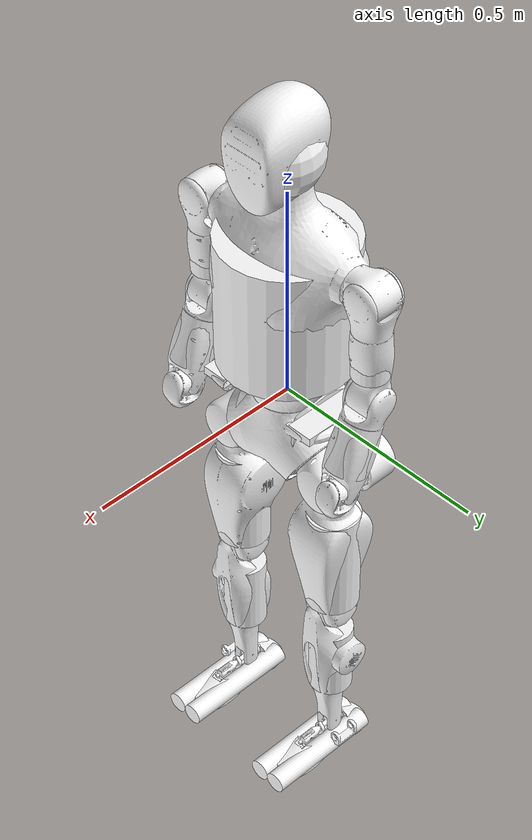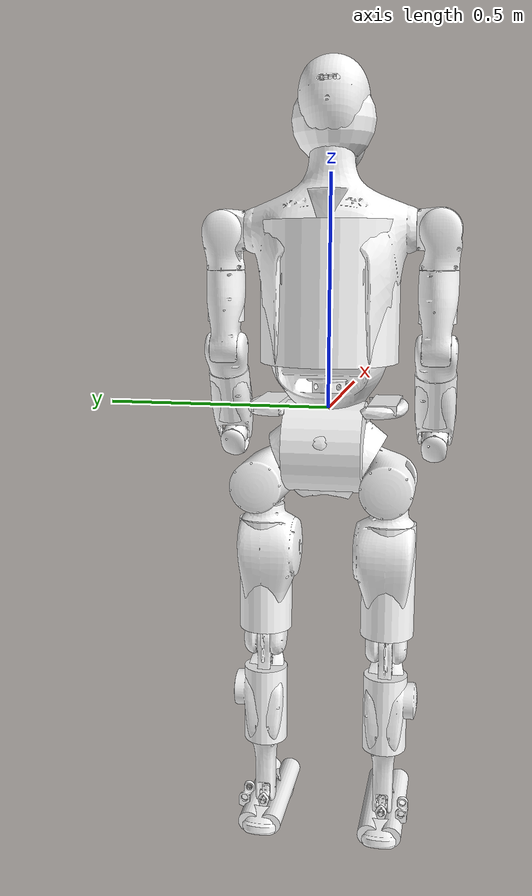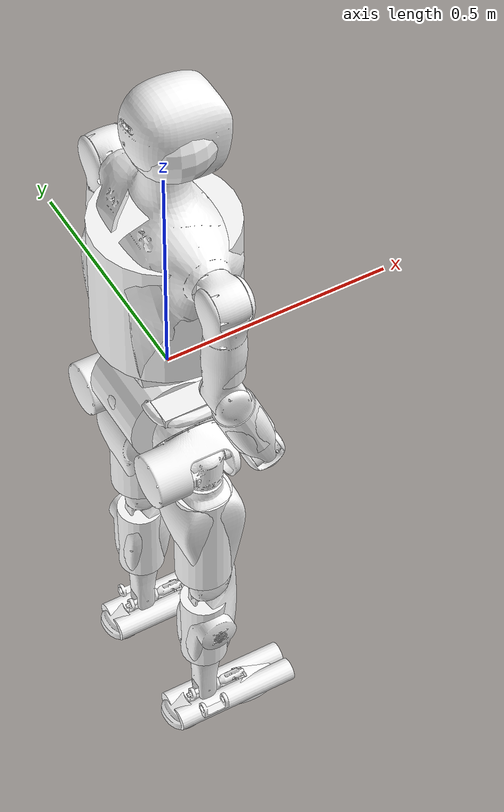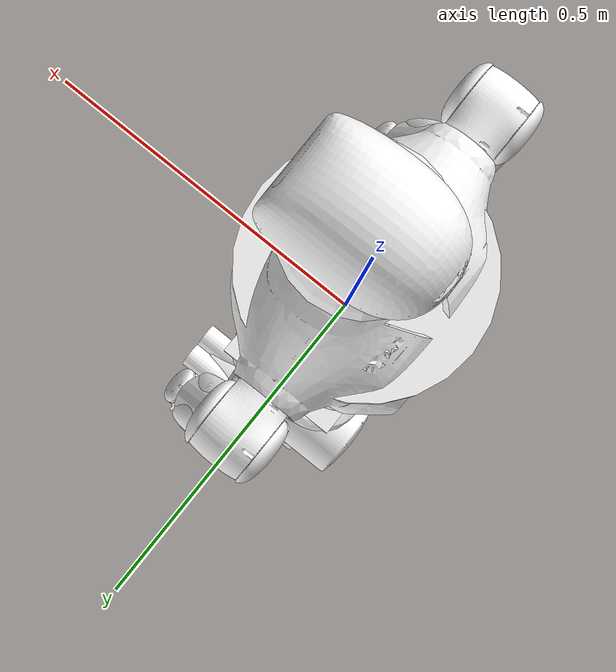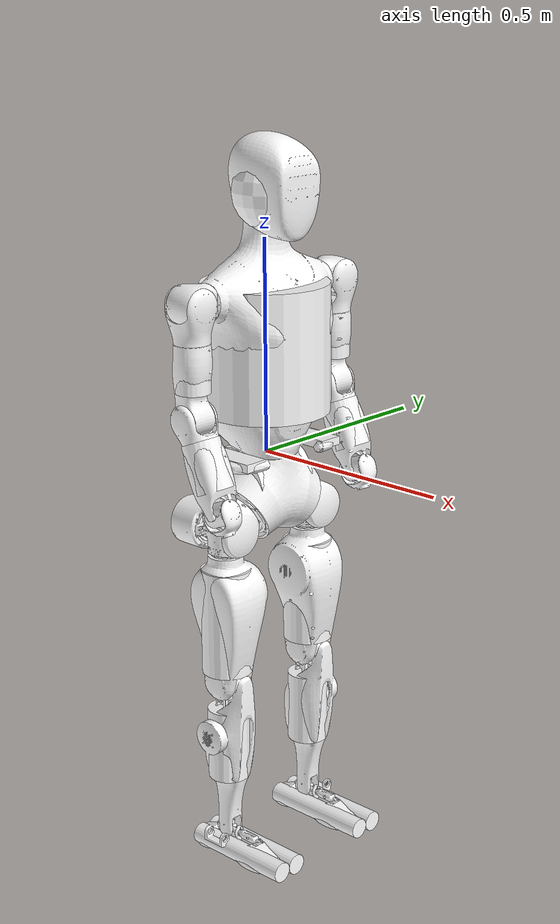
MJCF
<mujoco model="gr2v3_8_7">
  <compiler angle="radian" meshdir="../meshes/"/>

  <asset>
    <mesh name="base_link" file="../meshes/gr2v3_8_7/base_link.STL"/>
    <mesh name="waist_yaw_link" file="../meshes/gr2v3_8_7/waist_yaw_link.STL"/>
    <mesh name="torso_link" file="../meshes/gr2v3_8_7/torso_link.STL"/>
    <mesh name="head_yaw_link" file="../meshes/gr2v3_8_7/head_yaw_link.STL"/>
    <mesh name="head_pitch_link" file="../meshes/gr2v3_8_7/head_pitch_link.STL"/>
    <mesh name="left_upper_arm_pitch_link" file="../meshes/gr2v3_8_7/left_upper_arm_pitch_link.STL"/>
    <mesh name="left_upper_arm_roll_link" file="../meshes/gr2v3_8_7/left_upper_arm_roll_link.STL"/>
    <mesh name="left_upper_arm_yaw_link" file="../meshes/gr2v3_8_7/left_upper_arm_yaw_link.STL"/>
    <mesh name="left_lower_arm_pitch_link" file="../meshes/gr2v3_8_7/left_lower_arm_pitch_link.STL"/>
    <mesh name="left_hand_yaw_link" file="../meshes/gr2v3_8_7/left_hand_yaw_link.STL"/>
    <mesh name="left_hand_pitch_link" file="../meshes/gr2v3_8_7/left_hand_pitch_link.STL"/>
    <mesh name="left_hand_roll_link" file="../meshes/gr2v3_8_7/left_hand_roll_link.STL"/>
    <mesh name="right_upper_arm_pitch_link" file="../meshes/gr2v3_8_7/right_upper_arm_pitch_link.STL"/>
    <mesh name="right_upper_arm_roll_link" file="../meshes/gr2v3_8_7/right_upper_arm_roll_link.STL"/>
    <mesh name="right_upper_arm_yaw_link" file="../meshes/gr2v3_8_7/right_upper_arm_yaw_link.STL"/>
    <mesh name="right_lower_arm_pitch_link" file="../meshes/gr2v3_8_7/right_lower_arm_pitch_link.STL"/>
    <mesh name="right_hand_yaw_link" file="../meshes/gr2v3_8_7/right_hand_yaw_link.STL"/>
    <mesh name="right_hand_pitch_link" file="../meshes/gr2v3_8_7/right_hand_pitch_link.STL"/>
    <mesh name="right_hand_roll_link" file="../meshes/gr2v3_8_7/right_hand_roll_link.STL"/>
    <mesh name="left_thigh_pitch_link" file="../meshes/gr2v3_8_7/left_thigh_pitch_link.STL"/>
    <mesh name="left_thigh_roll_link" file="../meshes/gr2v3_8_7/left_thigh_roll_link.STL"/>
    <mesh name="left_thigh_yaw_link" file="../meshes/gr2v3_8_7/left_thigh_yaw_link.STL"/>
    <mesh name="left_shank_pitch_link" file="../meshes/gr2v3_8_7/left_shank_pitch_link.STL"/>
    <mesh name="left_foot_pitch_link" file="../meshes/gr2v3_8_7/left_foot_pitch_link.STL"/>
    <mesh name="left_foot_roll_link" file="../meshes/gr2v3_8_7/left_foot_roll_link.STL"/>
    <mesh name="right_thigh_pitch_link" file="../meshes/gr2v3_8_7/right_thigh_pitch_link.STL"/>
    <mesh name="right_thigh_roll_link" file="../meshes/gr2v3_8_7/right_thigh_roll_link.STL"/>
    <mesh name="right_thigh_yaw_link" file="../meshes/gr2v3_8_7/right_thigh_yaw_link.STL"/>
    <mesh name="right_shank_pitch_link" file="../meshes/gr2v3_8_7/right_shank_pitch_link.STL"/>
    <mesh name="right_foot_pitch_link" file="../meshes/gr2v3_8_7/right_foot_pitch_link.STL"/>
    <mesh name="right_foot_roll_link" file="../meshes/gr2v3_8_7/right_foot_roll_link.STL"/>
  </asset>

  <worldbody>
    <body name="base_link">
      <inertial pos="-0.0030357 6.968e-05 -0.087284" quat="0.705728 0.707896 -0.0206642 0.0201244" mass="6.6598" diaginertia="0.04838 0.0411671 0.0307809"/>
      <geom type="mesh" contype="0" conaffinity="0" group="1" density="0" rgba="1 1 1 1" mesh="base_link"/>
      <geom size="0.09 0.03 0.01" pos="0 0.125 0.01" type="box" rgba="1 1 1 1"/>
      <geom size="0.09 0.03 0.01" pos="0 -0.125 0.01" type="box" rgba="1 1 1 1"/>
      <geom size="0.1 0.085" pos="-0.03 0 -0.08" quat="0.707388 0.706825 0 0" type="cylinder" rgba="1 1 1 1"/>
      <body name="waist_yaw_link" pos="0 0 -0.0159">
        <inertial pos="-2.017e-05 8.88e-05 0.024104" quat="0.823866 0.000581997 0.000153429 0.566785" mass="0.67252" diaginertia="0.00106243 0.00106217 0.000590989"/>
        <joint name="waist_yaw_joint" pos="0 0 0" axis="0 0 1" range="-2.618 2.618" actuatorfrcrange="-74.45 74.45" damping="0.01" frictionloss="0.01"/>
        <geom type="mesh" contype="0" conaffinity="0" group="1" density="0" rgba="1 1 1 1" mesh="waist_yaw_link"/>
        <body name="torso_link" pos="0 0 0.39681">
          <inertial pos="-0.0054214 0.0010624 -0.12326" quat="0.999966 0.00168327 0.00799333 0.00136367" mass="14.058" diaginertia="0.254537 0.215651 0.110662"/>
          <geom type="mesh" contype="0" conaffinity="0" group="1" density="0" rgba="1 1 1 1" mesh="torso_link"/>
          <geom size="0.15 0.15" pos="0 0 -0.13" type="cylinder" rgba="1 1 1 1"/>
          <body name="head_yaw_link" pos="0.001 0 0.11061">
            <inertial pos="0 0.0099543 0.0065646" quat="0.972635 -0.232338 0 0" mass="0.1402" diaginertia="0.00012944 0.000126981 2.79892e-05"/>
            <joint name="head_yaw_joint" pos="0 0 0" axis="0 0 1" range="-1.3963 1.3963" actuatorfrcrange="-17.325 17.325" damping="0.01" frictionloss="0.01"/>
            <geom type="mesh" contype="0" conaffinity="0" group="1" density="0" rgba="1 1 1 1" mesh="head_yaw_link"/>
            <body name="head_pitch_link" pos="0 0 0.044185">
              <inertial pos="0.031582 0.0012059 0.072239" quat="0.694215 0.113508 0.0964382 0.704188" mass="1.6096" diaginertia="0.0104269 0.00789733 0.00590535"/>
              <joint name="head_pitch_joint" pos="0 0 0" axis="0 1 0" range="-0.5236 0.5236" actuatorfrcrange="-17.325 17.325" damping="0.01" frictionloss="0.01"/>
              <geom type="mesh" contype="0" conaffinity="0" group="1" density="0" rgba="1 1 1 1" mesh="head_pitch_link"/>
              <geom size="0.09" pos="0.02 0 0.07" rgba="1 1 1 1"/>
              <body name="camera_link" pos="0.11296 0 0.09815"/>
            </body>
          </body>
          <body name="left_upper_arm_pitch_link" pos="0 0.15115 0">
            <inertial pos="0.0022312 0.040265 3.797e-05" quat="0.706989 0.706971 -0.0130037 -0.0137803" mass="1.3432" diaginertia="0.00318387 0.0030442 0.00125333"/>
            <joint name="left_shoulder_pitch_joint" pos="0 0 0" axis="0 1 0" range="-2.9671 2.9671" actuatorfrcrange="-74.45 74.45" damping="0.01" frictionloss="0.01"/>
            <geom type="mesh" contype="0" conaffinity="0" group="1" density="0" rgba="1 1 1 1" mesh="left_upper_arm_pitch_link"/>
            <body name="left_upper_arm_roll_link" pos="0 0.078848 0">
              <inertial pos="0.0087432 0.0022878 -0.038787" quat="0.731821 0.0644488 0.0680057 0.675026" mass="0.96142" diaginertia="0.00280254 0.00267381 0.000848354"/>
              <joint name="left_shoulder_roll_joint" pos="0 0 0" axis="1 0 0" range="-0.5236 2.7925" actuatorfrcrange="-74.45 74.45" damping="0.01" frictionloss="0.01"/>
              <geom type="mesh" contype="0" conaffinity="0" group="1" density="0" rgba="1 1 1 1" mesh="left_upper_arm_roll_link"/>
              <geom size="0.045" rgba="1 1 1 1"/>
              <body name="left_upper_arm_yaw_link" pos="0 0 -0.09438">
                <inertial pos="-0.00056161 0.0012137 -0.091108" quat="0.711973 0.00606212 -0.00534792 0.70216" mass="1.3181" diaginertia="0.00680739 0.0067903 0.0010838"/>
                <joint name="left_shoulder_yaw_joint" pos="0 0 0" axis="0 0 1" range="-1.8326 1.8326" actuatorfrcrange="-42.75 42.75" damping="0.01" frictionloss="0.01"/>
                <geom type="mesh" contype="0" conaffinity="0" group="1" density="0" rgba="1 1 1 1" mesh="left_upper_arm_yaw_link"/>
                <geom size="0.04 0.05" pos="0 0 -0.05" type="cylinder" rgba="1 1 1 1"/>
                <body name="left_lower_arm_pitch_link" pos="0 0 -0.16111" quat="0.980795 0 -0.195042 0">
                  <inertial pos="-0.0014862 0.006973 -0.021097" quat="0.988022 -0.153585 0.00398239 -0.014411" mass="0.45807" diaginertia="0.000689859 0.000595495 0.000367996"/>
                  <joint name="left_elbow_pitch_joint" pos="0 0 0" axis="0 1 0" range="-1.5272 0.47997" actuatorfrcrange="-42.75 42.75" damping="0.01" frictionloss="0.01"/>
                  <geom type="mesh" contype="0" conaffinity="0" group="1" density="0" rgba="1 1 1 1" mesh="left_lower_arm_pitch_link"/>
                  <body name="left_hand_yaw_link" pos="0 0 -0.058525">
                    <inertial pos="0.00027991 0.0038031 -0.062955" quat="0.998141 0.0514847 -0.00557981 -0.0321454" mass="1.0855" diaginertia="0.00236057 0.00224794 0.00087367"/>
                    <joint name="left_wrist_yaw_joint" pos="0 0 0" axis="0 0 1" range="-1.8326 1.8326" actuatorfrcrange="-17.325 17.325" damping="0.01" frictionloss="0.01"/>
                    <geom type="mesh" contype="0" conaffinity="0" group="1" density="0" rgba="1 1 1 1" mesh="left_hand_yaw_link"/>
                    <geom size="0.045 0.0575" pos="0 0 -0.05" type="cylinder" rgba="1 1 1 1"/>
                    <body name="left_hand_pitch_link" pos="0 0 -0.16102">
                      <inertial pos="0.0038604 2.7474e-05 2.9411e-06" quat="-0.0260138 0.704893 0.00415181 0.708824" mass="0.45716" diaginertia="0.000234837 0.000228139 0.000219414"/>
                      <joint name="left_wrist_pitch_joint" pos="0 0 0" axis="0 1 0" range="-0.61087 0.61087" actuatorfrcrange="-17.325 17.325" damping="0.01" frictionloss="0.01"/>
                      <geom type="mesh" contype="0" conaffinity="0" group="1" density="0" rgba="1 1 1 1" mesh="left_hand_pitch_link"/>
                      <body name="left_hand_roll_link">
                        <inertial pos="0.0087325 -2.8386e-05 -0.015719" quat="0.605545 0.36526 0.366039 0.60491" mass="0.20259" diaginertia="0.00019338 0.000159959 0.000100541"/>
                        <joint name="left_wrist_roll_joint" pos="0 0 0" axis="1 0 0" range="-0.95993 0.95993" actuatorfrcrange="-17.325 17.325" damping="0.01" frictionloss="0.01"/>
                        <geom type="mesh" contype="0" conaffinity="0" group="1" density="0" rgba="1 1 1 1" mesh="left_hand_roll_link"/>
                        <body name="left_end_effector_link" pos="0 0 -0.045"/>
                      </body>
                    </body>
                  </body>
                </body>
              </body>
            </body>
          </body>
          <body name="right_upper_arm_pitch_link" pos="0 -0.1585 0">
            <inertial pos="0.0022312 -0.040265 3.797e-05" quat="0.706971 0.706989 0.0137803 0.0130037" mass="1.3432" diaginertia="0.00318387 0.0030442 0.00125333"/>
            <joint name="right_shoulder_pitch_joint" pos="0 0 0" axis="0 1 0" range="-2.9671 2.9671" actuatorfrcrange="-74.45 74.45" damping="0.01" frictionloss="0.01"/>
            <geom type="mesh" contype="0" conaffinity="0" group="1" density="0" rgba="1 1 1 1" mesh="right_upper_arm_pitch_link"/>
            <body name="right_upper_arm_roll_link" pos="0 -0.071498 0">
              <inertial pos="0.0087432 -0.0022878 -0.038787" quat="0.675026 0.0680057 0.0644488 0.731821" mass="0.96142" diaginertia="0.00280254 0.00267381 0.000848354"/>
              <joint name="right_shoulder_roll_joint" pos="0 0 0" axis="1 0 0" range="-2.7925 0.5236" actuatorfrcrange="-74.45 74.45" damping="0.01" frictionloss="0.01"/>
              <geom type="mesh" contype="0" conaffinity="0" group="1" density="0" rgba="1 1 1 1" mesh="right_upper_arm_roll_link"/>
              <geom size="0.045" rgba="1 1 1 1"/>
              <body name="right_upper_arm_yaw_link" pos="0 0 -0.09438">
                <inertial pos="-0.00056161 -0.0012137 -0.091108" quat="0.70216 -0.00534792 0.00606212 0.711973" mass="1.3181" diaginertia="0.00680739 0.0067903 0.0010838"/>
                <joint name="right_shoulder_yaw_joint" pos="0 0 0" axis="0 0 1" range="-1.8326 1.8326" actuatorfrcrange="-42.75 42.75" damping="0.01" frictionloss="0.01"/>
                <geom type="mesh" contype="0" conaffinity="0" group="1" density="0" rgba="1 1 1 1" mesh="right_upper_arm_yaw_link"/>
                <geom size="0.04 0.05" pos="0 0 -0.05" type="cylinder" rgba="1 1 1 1"/>
                <body name="right_lower_arm_pitch_link" pos="0 0 -0.16111" quat="0.98079 0 -0.195066 0">
                  <inertial pos="-0.0014862 -0.006973 -0.021097" quat="0.988022 0.153585 0.00398239 0.014411" mass="0.45807" diaginertia="0.000689859 0.000595495 0.000367996"/>
                  <joint name="right_elbow_pitch_joint" pos="0 0 0" axis="0 1 0" range="-1.5272 0.47997" actuatorfrcrange="-42.75 42.75" damping="0.01" frictionloss="0.01"/>
                  <geom type="mesh" contype="0" conaffinity="0" group="1" density="0" rgba="1 1 1 1" mesh="right_lower_arm_pitch_link"/>
                  <body name="right_hand_yaw_link" pos="0 0 -0.058525">
                    <inertial pos="0.00027991 -0.0038031 -0.062955" quat="0.998141 -0.0514847 -0.00557981 0.0321454" mass="1.0855" diaginertia="0.00236057 0.00224794 0.00087367"/>
                    <joint name="right_wrist_yaw_joint" pos="0 0 0" axis="0 0 1" range="-1.8326 1.8326" actuatorfrcrange="-17.325 17.325" damping="0.01" frictionloss="0.01"/>
                    <geom type="mesh" contype="0" conaffinity="0" group="1" density="0" rgba="1 1 1 1" mesh="right_hand_yaw_link"/>
                    <geom size="0.045 0.05775" pos="0 0 -0.05" type="cylinder" rgba="1 1 1 1"/>
                    <body name="right_hand_pitch_link" pos="0 0 -0.16102">
                      <inertial pos="0.0038604 -2.7474e-05 2.9411e-06" quat="0.0260138 0.704893 -0.00415181 0.708824" mass="0.45716" diaginertia="0.000234837 0.000228139 0.000219414"/>
                      <joint name="right_wrist_pitch_joint" pos="0 0 0" axis="0 1 0" range="-0.61087 0.61087" actuatorfrcrange="-17.325 17.325" damping="0.01" frictionloss="0.01"/>
                      <geom type="mesh" contype="0" conaffinity="0" group="1" density="0" rgba="1 1 1 1" mesh="right_hand_pitch_link"/>
                      <body name="right_hand_roll_link">
                        <inertial pos="0.0087325 2.8386e-05 -0.015719" quat="0.60491 0.366039 0.36526 0.605545" mass="0.20259" diaginertia="0.00019338 0.000159959 0.000100541"/>
                        <joint name="right_wrist_roll_joint" pos="0 0 0" axis="1 0 0" range="-0.95993 0.95993" actuatorfrcrange="-17.325 17.325" damping="0.01" frictionloss="0.01"/>
                        <geom type="mesh" contype="0" conaffinity="0" group="1" density="0" rgba="1 1 1 1" mesh="right_hand_roll_link"/>
                        <body name="right_end_effector_link" pos="0 0 -0.045"/>
                      </body>
                    </body>
                  </body>
                </body>
              </body>
            </body>
          </body>
        </body>
      </body>
      <body name="left_thigh_pitch_link" pos="0 0.076867 -0.12355" quat="0.965926 -0.25882 0 0">
        <inertial pos="-0.035065 0.036467 0.0020083" quat="0.148217 0.621705 -0.336914 0.691378" mass="2.61" diaginertia="0.0117524 0.0112934 0.00485715"/>
        <joint name="left_hip_pitch_joint" pos="0 0 0" axis="0 1 0" range="-2.618 2.618" actuatorfrcrange="-366.05 366.05" damping="0.01" frictionloss="0.01"/>
        <geom type="mesh" contype="0" conaffinity="0" group="1" density="0" rgba="1 1 1 1" mesh="left_thigh_pitch_link"/>
        <body name="left_thigh_roll_link" pos="-0.062 0.0729 0" quat="0.965926 0.25882 0 0">
          <inertial pos="0.027776 -0.00010848 -0.0074687" quat="-0.00754734 0.775274 -0.0068887 0.631542" mass="1.3487" diaginertia="0.00283572 0.00263683 0.00111045"/>
          <joint name="left_hip_roll_joint" pos="0 0 0" axis="1 0 0" range="-0.59341 1.5708" actuatorfrcrange="-95.472 95.472" damping="0.01" frictionloss="0.01"/>
          <geom type="mesh" contype="0" conaffinity="0" group="1" density="0" rgba="1 1 1 1" mesh="left_thigh_roll_link"/>
          <body name="left_thigh_yaw_link" pos="0.062 0 -0.03495">
            <inertial pos="0.0010147 -0.012758 -0.14387" quat="0.678148 0.00564457 -0.015008 0.73475" mass="5.1152" diaginertia="0.0432183 0.0422948 0.00988572"/>
            <joint name="left_hip_yaw_joint" pos="0 0 0" axis="0 0 1" range="-0.69813 1.5708" actuatorfrcrange="-54.33 54.33" damping="0.01" frictionloss="0.01"/>
            <geom type="mesh" contype="0" conaffinity="0" group="1" density="0" rgba="1 1 1 1" mesh="left_thigh_yaw_link"/>
            <geom size="0.06 0.13" pos="0 0 -0.19" type="cylinder" rgba="1 1 1 1"/>
            <body name="left_shank_pitch_link" pos="0 0 -0.34305">
              <inertial pos="0.0045396 0.0037923 -0.17984" quat="0.730652 0.00610221 -0.00304271 0.682716" mass="3.7232" diaginertia="0.0379673 0.036988 0.00391569"/>
              <joint name="left_knee_pitch_joint" pos="0 0 0" axis="0 1 0" range="-0.087266 2.3562" actuatorfrcrange="-366.05 366.05" damping="0.01" frictionloss="0.01"/>
              <geom type="mesh" contype="0" conaffinity="0" group="1" density="0" rgba="1 1 1 1" mesh="left_shank_pitch_link"/>
              <geom size="0.05 0.09" pos="0 0 -0.165" type="cylinder" rgba="1 1 1 1"/>
              <body name="left_foot_pitch_link" pos="0 0 -0.406">
                <inertial pos="0.028326 1.186e-05 0.0010629" quat="-0.0577526 0.713055 -0.0588821 0.69624" mass="0.18479" diaginertia="0.000245493 0.00024437 1.24977e-05"/>
                <joint name="left_ankle_pitch_joint" pos="0 0 0" axis="0 1 0" range="-0.7854 0.7854" actuatorfrcrange="-54.33 54.33" damping="0.01" frictionloss="0.01"/>
                <geom type="mesh" contype="0" conaffinity="0" group="1" density="0" rgba="1 1 1 1" mesh="left_foot_pitch_link"/>
                <body name="left_foot_roll_link">
                  <inertial pos="0.027263 0.0064312 -0.032367" quat="-0.109682 0.704682 -0.151147 0.684505" mass="1.1125" diaginertia="0.00570439 0.00514213 0.00105708"/>
                  <joint name="left_ankle_roll_joint" pos="0 0 0" axis="1 0 0" range="-0.38397 0.38397" actuatorfrcrange="-29.835 29.835" damping="0.01" frictionloss="0.01"/>
                  <geom type="mesh" contype="0" conaffinity="0" group="1" density="0" rgba="1 1 1 1" mesh="left_foot_roll_link"/>
                  <geom size="0.025 0.14" pos="0.06 -0.025 -0.033" quat="0.707388 0 0.706825 0" type="cylinder" rgba="1 1 1 1"/>
                  <geom size="0.025 0.14" pos="0.06 0.025 -0.033" quat="0.707388 0 0.706825 0" type="cylinder" rgba="1 1 1 1"/>
                </body>
              </body>
            </body>
          </body>
        </body>
      </body>
      <body name="right_thigh_pitch_link" pos="0 -0.076867 -0.12355" quat="0.965926 0.25882 0 0">
        <inertial pos="-0.035065 -0.036467 0.0020083" quat="-0.148217 0.621705 0.336914 0.691378" mass="2.61" diaginertia="0.0117524 0.0112934 0.00485715"/>
        <joint name="right_hip_pitch_joint" pos="0 0 0" axis="0 1 0" range="-2.618 2.618" actuatorfrcrange="-366.05 366.05" damping="0.01" frictionloss="0.01"/>
        <geom type="mesh" contype="0" conaffinity="0" group="1" density="0" rgba="1 1 1 1" mesh="right_thigh_pitch_link"/>
        <body name="right_thigh_roll_link" pos="-0.062 -0.0729 0" quat="0.965926 -0.25882 0 0">
          <inertial pos="0.027776 0.00010848 -0.0074687" quat="0.00754734 0.775274 0.0068887 0.631542" mass="1.3487" diaginertia="0.00283572 0.00263683 0.00111045"/>
          <joint name="right_hip_roll_joint" pos="0 0 0" axis="1 0 0" range="-1.5708 0.59341" actuatorfrcrange="-95.472 95.472" damping="0.01" frictionloss="0.01"/>
          <geom type="mesh" contype="0" conaffinity="0" group="1" density="0" rgba="1 1 1 1" mesh="right_thigh_roll_link"/>
          <body name="right_thigh_yaw_link" pos="0.062 0 -0.03495">
            <inertial pos="0.0010147 0.012758 -0.14387" quat="0.73475 -0.015008 0.00564457 0.678148" mass="5.1152" diaginertia="0.0432183 0.0422948 0.00988572"/>
            <joint name="right_hip_yaw_joint" pos="0 0 0" axis="0 0 1" range="-1.5708 0.69813" actuatorfrcrange="-54.33 54.33" damping="0.01" frictionloss="0.01"/>
            <geom type="mesh" contype="0" conaffinity="0" group="1" density="0" rgba="1 1 1 1" mesh="right_thigh_yaw_link"/>
            <geom size="0.06 0.13" pos="0 0 -0.19" type="cylinder" rgba="1 1 1 1"/>
            <body name="right_shank_pitch_link" pos="0 0 -0.34305">
              <inertial pos="0.0045396 -0.0037923 -0.17984" quat="0.682716 -0.00304271 0.00610221 0.730652" mass="3.7232" diaginertia="0.0379673 0.036988 0.00391569"/>
              <joint name="right_knee_pitch_joint" pos="0 0 0" axis="0 1 0" range="-0.087266 2.3562" actuatorfrcrange="-366.05 366.05" damping="0.01" frictionloss="0.01"/>
              <geom type="mesh" contype="0" conaffinity="0" group="1" density="0" rgba="1 1 1 1" mesh="right_shank_pitch_link"/>
              <geom size="0.05 0.09" pos="0 0 -0.165" type="cylinder" rgba="1 1 1 1"/>
              <body name="right_foot_pitch_link" pos="0 0 -0.406">
                <inertial pos="0.028326 -1.186e-05 0.0010629" quat="0.0577526 0.713055 0.0588821 0.69624" mass="0.18479" diaginertia="0.000245493 0.00024437 1.24977e-05"/>
                <joint name="right_ankle_pitch_joint" pos="0 0 0" axis="0 1 0" range="-0.7854 0.7854" actuatorfrcrange="-54.33 54.33" damping="0.01" frictionloss="0.01"/>
                <geom type="mesh" contype="0" conaffinity="0" group="1" density="0" rgba="1 1 1 1" mesh="right_foot_pitch_link"/>
                <body name="right_foot_roll_link">
                  <inertial pos="0.027263 -0.0064312 -0.032367" quat="0.109682 0.704682 0.151147 0.684505" mass="1.1125" diaginertia="0.00570439 0.00514213 0.00105708"/>
                  <joint name="right_ankle_roll_joint" pos="0 0 0" axis="1 0 0" range="-0.38397 0.38397" actuatorfrcrange="-29.835 29.835" damping="0.01" frictionloss="0.01"/>
                  <geom type="mesh" contype="0" conaffinity="0" group="1" density="0" rgba="1 1 1 1" mesh="right_foot_roll_link"/>
                  <geom size="0.025 0.14" pos="0.06 -0.025 -0.033" quat="0.707388 0 0.706825 0" type="cylinder" rgba="1 1 1 1"/>
                  <geom size="0.025 0.14" pos="0.06 0.025 -0.033" quat="0.707388 0 0.706825 0" type="cylinder" rgba="1 1 1 1"/>
                </body>
              </body>
            </body>
          </body>
        </body>
      </body>
      <body name="imu_link" pos="-0.059 0 -0.068">
        <inertial pos="0 0 0" mass="0" diaginertia="0 0 0"/>
      </body>
    </body>
  </worldbody>
</mujoco>
